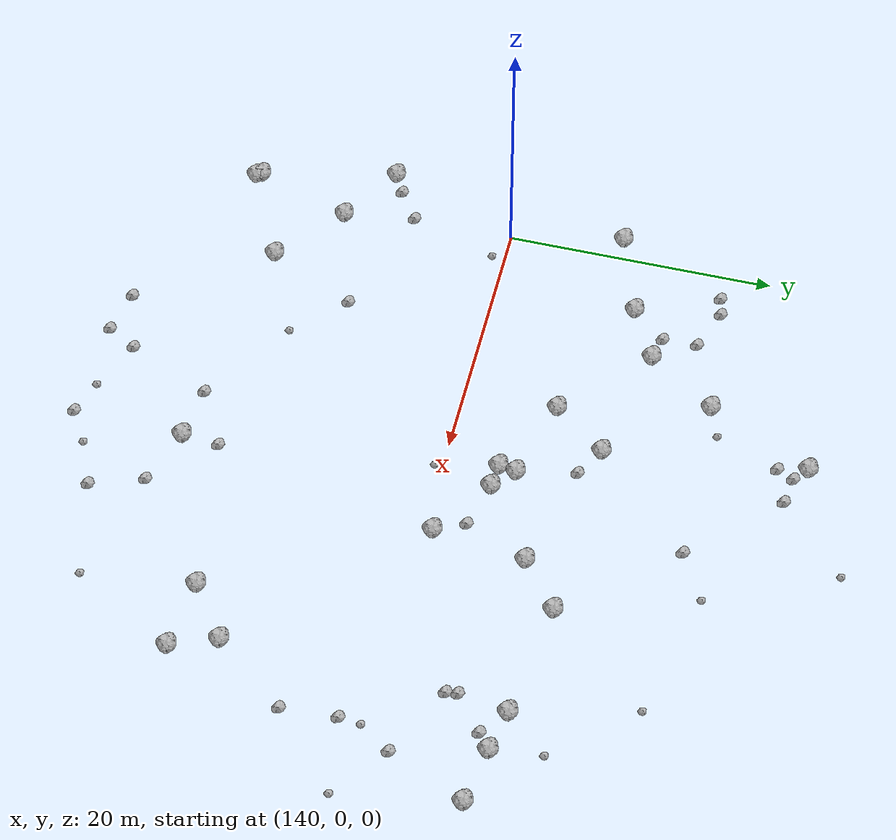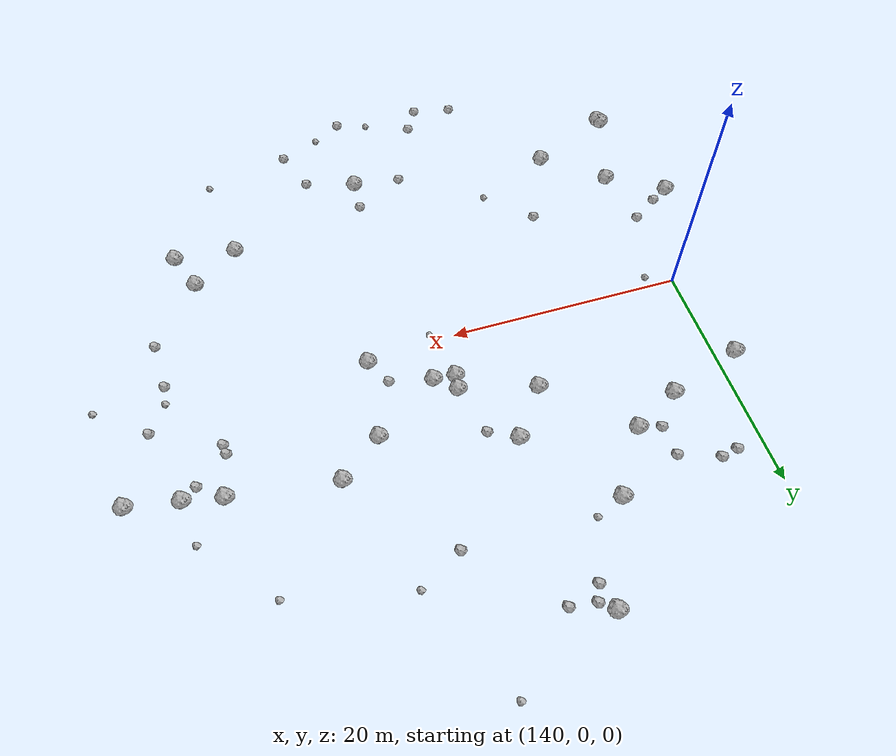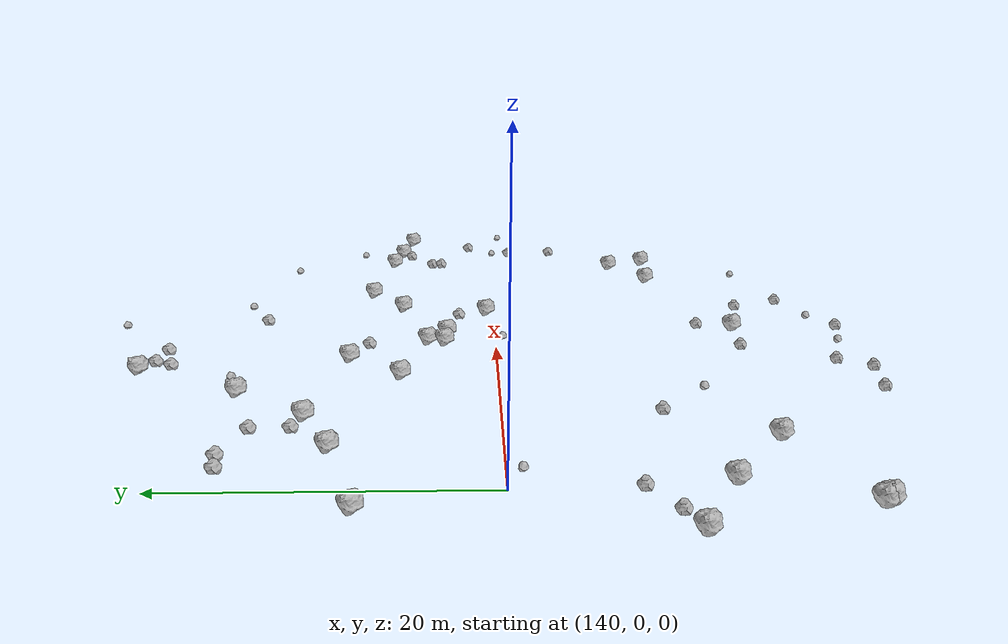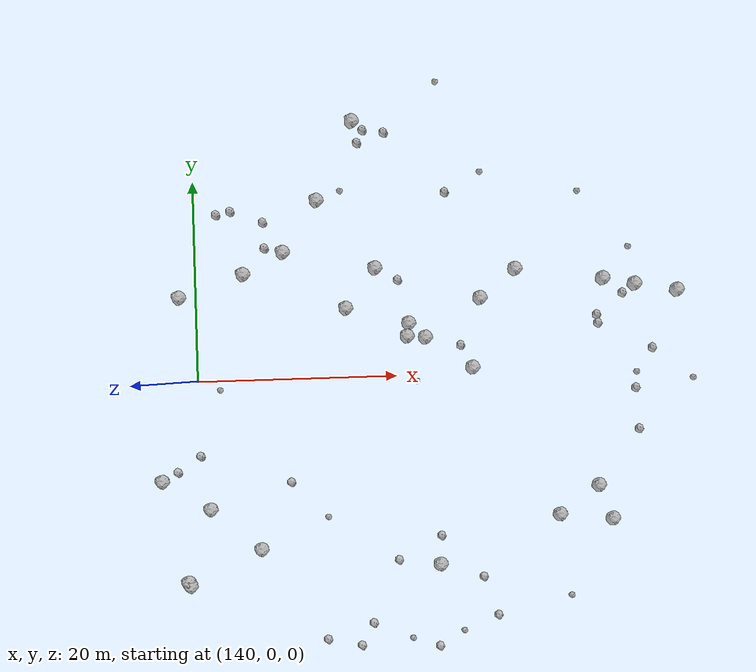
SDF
<sdf version="1.6">
 <world name="default">
  <include><uri>model://sun</uri></include>
  <model name="rock1_4_2">
   <include><uri>model://rock1</uri><pose>175.9557372049568 -14.275437855927049 0.5 0 0 0</pose></include>
  </model>
  <model name="rock1_4_3">
   <include><uri>model://rock1</uri><pose>156.21890554392738 25.625770846096728 0.5 0 0 0</pose></include>
  </model>
  <model name="rock1_4_4">
   <include><uri>model://rock1</uri><pose>138.42685240746016 8.426729592187932 0.5 0 0 0</pose></include>
  </model>
  <model name="rock1_4_5">
   <include><uri>model://rock1</uri><pose>146.00189240722537 -16.963327511114485 0.5 0 0 0</pose></include>
  </model>
  <model name="rock1_4_6">
   <include><uri>model://rock1</uri><pose>155.0990420201427 6.922798934770242 0.5 0 0 0</pose></include>
  </model>
  <model name="rock1_4_7">
   <include><uri>model://rock1</uri><pose>167.6336511433619 0.6597386230554321 0.5 0 0 0</pose></include>
  </model>
  <model name="rock1_4_8">
   <include><uri>model://rock1</uri><pose>152.45375916953776 17.793099086946313 0.5 0 0 0</pose></include>
  </model>
  <model name="rock1_4_9">
   <include><uri>model://rock1</uri><pose>141.02746974874427 -12.840602219899871 0.5 0 0 0</pose></include>
  </model>
  <model name="rock1_4_10">
   <include><uri>model://rock1</uri><pose>179.9214215369971 -11.458855438319326 0.5 0 0 0</pose></include>
  </model>
  <model name="rock1_4_11">
   <include><uri>model://rock1</uri><pose>136.25866124977603 -9.925402228514283 0.5 0 0 0</pose></include>
  </model>
  <model name="rock1_4_12">
   <include><uri>model://rock1</uri><pose>158.1300170548083 10.86602127962594 0.5 0 0 0</pose></include>
  </model>
  <model name="rock1_4_13">
   <include><uri>model://rock1</uri><pose>148.93834756242063 12.700966667158099 0.5 0 0 0</pose></include>
  </model>
  <model name="rock1_4_14">
   <include><uri>model://rock1</uri><pose>188.27147563878026 7.83606693305601 0.5 0 0 0</pose></include>
  </model>
  <model name="rock1_4_15">
   <include><uri>model://rock1</uri><pose>168.56048293088207 7.589662236094199 0.5 0 0 0</pose></include>
  </model>
  <model name="rock1_4_16">
   <include><uri>model://rock1</uri><pose>138.61292565429588 -20.0698211016529 0.5 0 0 0</pose></include>
  </model>
  <model name="rock1_4_17">
   <include><uri>model://rock1</uri><pose>161.35598176611452 5.256751151530906 0.5 0 0 0</pose></include>
  </model>
  <model name="rock1_4_18">
   <include><uri>model://rock1</uri><pose>161.15829421447205 3.9561501804880734 0.5 0 0 0</pose></include>
  </model>
  <model name="rock1_4_19">
   <include><uri>model://rock1</uri><pose>138.8149419659808 -20.4362278585377 0.5 0 0 0</pose></include>
  </model>
  <model name="rock1_4_20">
   <include><uri>model://rock1</uri><pose>163.85826506326583 -18.933405355767565 0.5 0 0 0</pose></include>
  </model>
  <model name="rock1_4_21">
   <include><uri>model://rock1</uri><pose>162.9813524588074 3.7997514842885067 0.5 0 0 0</pose></include>
  </model>
  <model name="rock1_4_22">
   <include><uri>model://rock1</uri><pose>180.88782654016754 9.201366708795824 0.5 0 0 0</pose></include>
  </model>
  <model name="rock1_4_23">
   <include><uri>model://rock1</uri><pose>181.22353063662428 -14.84020841074953 0.5 0 0 0</pose></include>
  </model>
  <model name="rock1_4_24">
   <include><uri>model://rock1</uri><pose>172.12439123555131 10.395252708005579 0.5 0 0 0</pose></include>
  </model>
  <model name="rock1_4_25">
   <include><uri>model://rock1</uri><pose>144.8983246577019 10.594560048147251 0.5 0 0 0</pose></include>
  </model>
  <model name="rock1_4_26">
   <include><uri>model://rock1</uri><pose>184.04721549106608 8.56679895422861 0.5 0 0 0</pose></include>
  </model>
  <model name="rock2_4_0">
   <include><uri>model://rock2</uri><pose>157.24252145224227 24.740442712159783 0.3 0 0 0</pose></include>
  </model>
  <model name="rock2_4_1">
   <include><uri>model://rock2</uri><pose>165.29729749796934 18.278006870540082 0.3 0 0 0</pose></include>
  </model>
  <model name="rock2_4_2">
   <include><uri>model://rock2</uri><pose>155.72865089524498 -26.913438421730326 0.3 0 0 0</pose></include>
  </model>
  <model name="rock2_4_3">
   <include><uri>model://rock2</uri><pose>168.14375227791768 -20.36520408001152 0.3 0 0 0</pose></include>
  </model>
  <model name="rock2_4_4">
   <include><uri>model://rock2</uri><pose>180.19399275271576 5.570854323001377 0.3 0 0 0</pose></include>
  </model>
  <model name="rock2_4_5">
   <include><uri>model://rock2</uri><pose>147.0665270569534 13.173914417068843 0.3 0 0 0</pose></include>
  </model>
  <model name="rock2_4_6">
   <include><uri>model://rock2</uri><pose>160.34265997938493 9.621333248261536 0.3 0 0 0</pose></include>
  </model>
  <model name="rock2_4_7">
   <include><uri>model://rock2</uri><pose>185.68407139068984 2.1002920799301776 0.3 0 0 0</pose></include>
  </model>
  <model name="rock2_4_8">
   <include><uri>model://rock2</uri><pose>140.10597975301474 -7.500649485139423 0.3 0 0 0</pose></include>
  </model>
  <model name="rock2_4_9">
   <include><uri>model://rock2</uri><pose>169.50798758918688 -24.237395319553606 0.3 0 0 0</pose></include>
  </model>
  <model name="rock2_4_10">
   <include><uri>model://rock2</uri><pose>152.34103549404597 -26.215677271838643 0.3 0 0 0</pose></include>
  </model>
  <model name="rock2_4_11">
   <include><uri>model://rock2</uri><pose>143.7443304361372 16.941993445477458 0.3 0 0 0</pose></include>
  </model>
  <model name="rock2_4_12">
   <include><uri>model://rock2</uri><pose>149.1283729672787 -10.350653125753439 0.3 0 0 0</pose></include>
  </model>
  <model name="rock2_4_13">
   <include><uri>model://rock2</uri><pose>164.02529855620662 -16.12817420212935 0.3 0 0 0</pose></include>
  </model>
  <model name="rock2_4_14">
   <include><uri>model://rock2</uri><pose>156.97445014171427 -24.706128992997794 0.3 0 0 0</pose></include>
  </model>
  <model name="rock2_4_15">
   <include><uri>model://rock2</uri><pose>163.549830379868 -27.183373060173924 0.3 0 0 0</pose></include>
  </model>
  <model name="rock2_4_16">
   <include><uri>model://rock2</uri><pose>137.77380754812017 -9.065371581448478 0.3 0 0 0</pose></include>
  </model>
  <model name="rock2_4_17">
   <include><uri>model://rock2</uri><pose>182.82756502528096 7.694993238498881 0.3 0 0 0</pose></include>
  </model>
  <model name="rock2_4_18">
   <include><uri>model://rock2</uri><pose>159.35455583147805 24.43842210944389 0.3 0 0 0</pose></include>
  </model>
  <model name="rock2_4_19">
   <include><uri>model://rock2</uri><pose>184.15106641190584 -5.986004201229996 0.3 0 0 0</pose></include>
  </model>
  <model name="rock2_4_20">
   <include><uri>model://rock2</uri><pose>159.69326851249724 -18.447983062022985 0.3 0 0 0</pose></include>
  </model>
  <model name="rock2_4_21">
   <include><uri>model://rock2</uri><pose>146.9740869169348 15.760617169015987 0.3 0 0 0</pose></include>
  </model>
  <model name="rock2_4_22">
   <include><uri>model://rock2</uri><pose>156.65770999862102 23.47314084714162 0.3 0 0 0</pose></include>
  </model>
  <model name="rock2_4_23">
   <include><uri>model://rock2</uri><pose>166.48249799454058 2.906818236394365 0.3 0 0 0</pose></include>
  </model>
  <model name="rock2_4_24">
   <include><uri>model://rock2</uri><pose>180.2992025691568 4.730034714987454 0.3 0 0 0</pose></include>
  </model>
  <model name="rock2_4_25">
   <include><uri>model://rock2</uri><pose>183.92110556016507 -1.8655813476321228 0.3 0 0 0</pose></include>
  </model>
  <model name="rock2_4_26">
   <include><uri>model://rock2</uri><pose>142.30177709292133 16.64799280477969 0.3 0 0 0</pose></include>
  </model>
  <model name="rock3_4_0">
   <include><uri>model://rock3</uri><pose>183.51734029479098 12.303594847377276 0.2 0 0 0</pose></include>
  </model>
  <model name="rock3_4_1">
   <include><uri>model://rock3</uri><pose>176.88379396534418 -22.52675606689543 0.2 0 0 0</pose></include>
  </model>
  <model name="rock3_4_2">
   <include><uri>model://rock3</uri><pose>160.83804781038393 -26.37588560272592 0.2 0 0 0</pose></include>
  </model>
  <model name="rock3_4_3">
   <include><uri>model://rock3</uri><pose>164.66037925666313 29.383413102203853 0.2 0 0 0</pose></include>
  </model>
  <model name="rock3_4_4">
   <include><uri>model://rock3</uri><pose>161.96907839025397 -0.5720139009514789 0.2 0 0 0</pose></include>
  </model>
  <model name="rock3_4_5">
   <include><uri>model://rock3</uri><pose>168.84953285384182 20.24186376935623 0.2 0 0 0</pose></include>
  </model>
  <model name="rock3_4_6">
   <include><uri>model://rock3</uri><pose>142.20882341857197 -0.9656833986853748 0.2 0 0 0</pose></include>
  </model>
  <model name="rock3_4_7">
   <include><uri>model://rock3</uri><pose>189.70495858490003 -1.03254142161963 0.2 0 0 0</pose></include>
  </model>
  <model name="rock3_4_8">
   <include><uri>model://rock3</uri><pose>184.0565718687131 -0.2943823869221198 0.2 0 0 0</pose></include>
  </model>
  <model name="rock3_4_9">
   <include><uri>model://rock3</uri><pose>154.77207789353335 18.71697966835196 0.2 0 0 0</pose></include>
  </model>
  <model name="rock3_4_10">
   <include><uri>model://rock3</uri><pose>152.69896866639016 -13.98885342656828 0.2 0 0 0</pose></include>
  </model>
  <model name="rock3_4_11">
   <include><uri>model://rock3</uri><pose>166.00996201498884 -25.761856898040964 0.2 0 0 0</pose></include>
  </model>
  <model name="rock3_4_12">
   <include><uri>model://rock3</uri><pose>178.56412420667857 18.024056043103315 0.2 0 0 0</pose></include>
  </model>
 </world>
</sdf>
